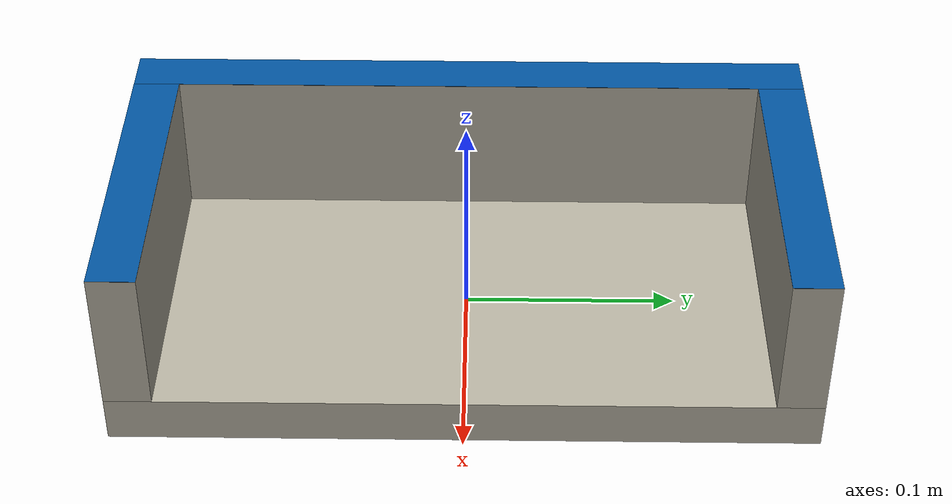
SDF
<?xml version ="1.0"?>
<sdf version="1.6">
    <model name="blue_planter">
        <static>false</static>
        <link name="blue_planter_base">
            <collision name="blue_planter_base_collision">
                <geometry>
                <box>
                    <size>0.172 0.325 0.022</size>
                </box>
                </geometry>
            </collision>
            <inertial>
                <inertia>
                <ixx>0.000703</ixx>
                <ixy>0</ixy>
                <ixz>0</ixz>
                <iyy>0.000703</iyy>
                <iyz>0</iyz>
                <izz>0.000703</izz>
                </inertia>
                <mass>0.1</mass>
            </inertial>
            <visual name="blue_planter_base_visual">
                <pose>0 0 0 0 0 0</pose>
                <geometry>
                    <box>
                        <size>0.172 0.325 0.022</size>
                    </box>
                </geometry>
                <material>
                    <ambient>0.71 0.69 0.63 1.0</ambient>
                    <diffuse>0.71 0.69 0.63 1.0</diffuse>
                    <specular>0.1 0.1 0.1 1</specular>
                    <emissive>0 0 0 0</emissive>
                </material>
            </visual>
        </link>
        <link name="blue_planter_wall_back">
            <pose>-0.075 0 0.046 0 0 0</pose>
            <collision name="blue_planter_wall_back_collision">
                <geometry>
                <box>
                    <size>0.022 0.325 0.07</size>
                </box>
                </geometry>
            </collision>
            <inertial>
                <inertia>
                <ixx>0.000703</ixx>
                <ixy>0</ixy>
                <ixz>0</ixz>
                <iyy>0.000703</iyy>
                <iyz>0</iyz>
                <izz>0.000703</izz>
                </inertia>
                <mass>0.1</mass>
            </inertial>
            <visual name="blue_planter_wall_back_visual">
                <geometry>
                    <box>
                        <size>0.022 0.325 0.07</size>
                    </box>
                </geometry>
                <material>
                    <ambient>0.71 0.69 0.63 1.0</ambient>
                    <diffuse>0.71 0.69 0.63 1.0</diffuse>
                    <specular>0.1 0.1 0.1 1</specular>
                    <emissive>0 0 0 0</emissive>
                </material>
            </visual>
            <visual name="wall_back_color_cap">
                <pose>0 0 0.03505 0 0 0</pose>
                <geometry>
                <box>
                    <size>0.022 0.325 0.0001</size>
                </box>
                </geometry>
                <material>
                    <ambient>0.00 0.32 0.61 1</ambient>
                    <diffuse>0.00 0.32 0.61 1</diffuse>
                    <specular>0.05 0.05 0.05 1</specular>
                </material>
            </visual>

        </link>
        <link name="blue_planter_wall_left">
            <pose>0.011 -0.1515 0.046 0 0 0</pose>
            <collision name="blue_planter_wall_left_collision">
                <geometry>
                <box>
                    <size>0.15 0.022 0.07</size>
                </box>
                </geometry>
            </collision>
            <inertial>
                <inertia>
                <ixx>0.000703</ixx>
                <ixy>0</ixy>
                <ixz>0</ixz>
                <iyy>0.000703</iyy>
                <iyz>0</iyz>
                <izz>0.000703</izz>
                </inertia>
                <mass>0.1</mass>
            </inertial>
            <visual name="blue_planter_wall_left_visual">
                <geometry>
                    <box>
                        <size>0.15 0.022 0.07</size>
                    </box>
                </geometry>
                <material>
                    <ambient>0.71 0.69 0.63 1.0</ambient>
                    <diffuse>0.71 0.69 0.63 1.0</diffuse>
                    <specular>0.1 0.1 0.1 1</specular>
                    <emissive>0 0 0 0</emissive>
                </material>
            </visual>
            <visual name="wall_left_color_cap">
                <pose>0 0 0.03505 0 0 0</pose>
                <geometry>
                <box>
                    <size>0.15 0.022 0.0001</size>
                </box>
                </geometry>
                <material>
                    <ambient>0.00 0.32 0.61 1</ambient>
                    <diffuse>0.00 0.32 0.61 1</diffuse>
                    <specular>0.05 0.05 0.05 1</specular>
                </material>
            </visual>
        </link>
        <link name="blue_planter_wall_right">
            <pose>0.011 0.1515 0.046 0 0 0</pose>
            <collision name="blue_planter_wall_right_collision">
                <geometry>
                <box>
                    <size>0.15 0.022 0.07</size>
                </box>
                </geometry>
            </collision>
            <inertial>
                <inertia>
                <ixx>0.000703</ixx>
                <ixy>0</ixy>
                <ixz>0</ixz>
                <iyy>0.000703</iyy>
                <iyz>0</iyz>
                <izz>0.000703</izz>
                </inertia>
                <mass>0.1</mass>
            </inertial>
            <visual name="blue_planter_wall_right_visual">
                <geometry>
                    <box>
                        <size>0.15 0.022 0.07</size>
                    </box>
                </geometry>
                <material>
                    <ambient>0.71 0.69 0.63 1.0</ambient>
                    <diffuse>0.71 0.69 0.63 1.0</diffuse>
                    <specular>0.1 0.1 0.1 1</specular>
                    <emissive>0 0 0 0</emissive>
                </material>
            </visual>
            <visual name="wall_right_color_cap">
                <pose>0 0 0.03505 0 0 0</pose>
                <geometry>
                <box>
                    <size>0.15 0.022 0.0001</size>
                </box>
                </geometry>
                <material>
                    <ambient>0.00 0.32 0.61 1</ambient>
                    <diffuse>0.00 0.32 0.61 1</diffuse>
                    <specular>0.05 0.05 0.05 1</specular>
                </material>
            </visual>
        </link>
        <joint name="back_wall_fixed" type="fixed">
            <parent>blue_planter_base</parent>
            <child>blue_planter_wall_back</child>
        </joint>
        <joint name="left_wall_fixed" type="fixed">
            <parent>blue_planter_base</parent>
            <child>blue_planter_wall_left</child>
        </joint>
        <joint name="right_wall_fixed" type="fixed">
            <parent>blue_planter_base</parent>
            <child>blue_planter_wall_right</child>
        </joint>
    </model>
</sdf>
